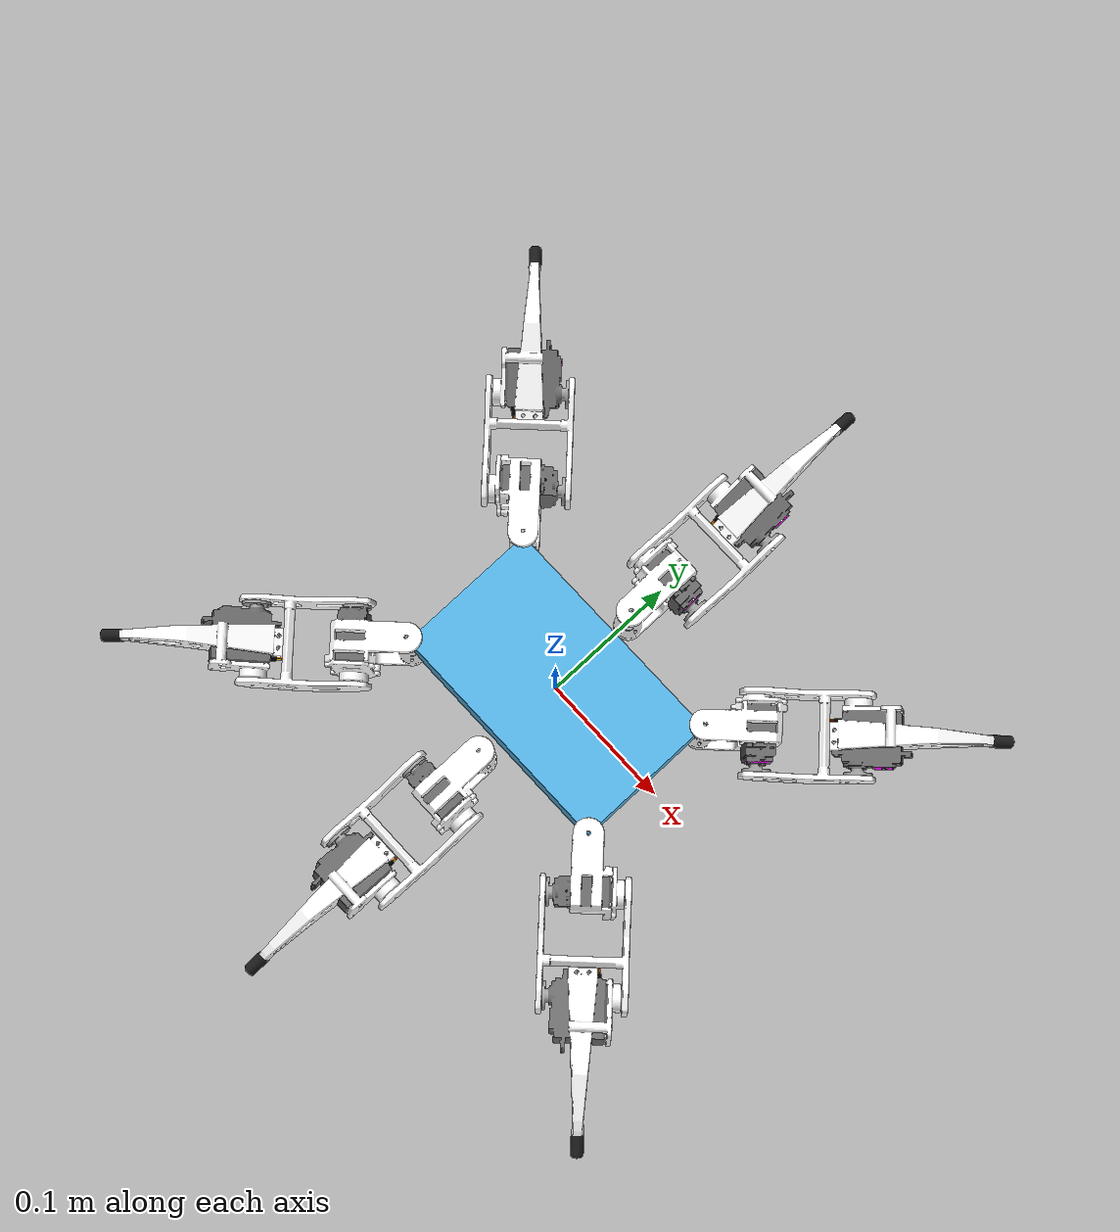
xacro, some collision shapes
<?xml version="1.0"?>
<robot name="hexapod" xmlns:xacro="http://www.ros.org/wiki/xacro">

  <!-- Included files. -->
  <xacro:include filename="xacro_include/joint_control_macro.xacro"/>
  <xacro:include filename="xacro_include/leg_macro.xacro"/>

  <!-- Root link -->
  <link name="base_link"/>

  <!-- Joint connecting root to base -->
  <joint name="root_to_base" type="fixed">
    <origin rpy="0 0 0" xyz="0 0 0"/>
    <parent link="base_link"/>
    <child link="base"/>
  </joint>

  <!-- Base Link -->
  <link name="base">
    <visual>
      <geometry>
        <mesh filename="package://hexapod_sim/meshes/base.dae"/>
      </geometry>
      <origin xyz="0 0 -0.0145" rpy="${-pi/2} 0 0"/>
    </visual>
    <collision>
      <geometry><box size="0.18 0.107 0.050"/></geometry>
      <origin xyz="0 0 0"/>
    </collision>
    <inertial>
      <mass value="0.2"/>
      <inertia ixx="0.001" ixy="0.0" ixz="0.0" iyy="0.001" iyz="0.0" izz="0.001"/>
    </inertial>
  </link>

  <!-- Joint Connecting base to the coxa -->
  <joint name="jl11" type="revolute">
    <axis xyz="1 0 0"/>
    <origin xyz="-0.09 -0.0535 -0.00075" rpy="${3*pi/4} ${pi/2} 0"/>
    <parent link="base"/>
    <child link="coxal1"/>
    <limit effort="1000.0" lower="${-pi}" upper="${pi}" velocity="${2*pi}"/>
    <dynamics damping="0.0" friction="0.0"/>
  </joint>

  <joint name="jl21" type="revolute">
    <axis xyz="1 0 0"/>
    <origin xyz="0 -0.070 -0.00075" rpy="${pi/2} ${pi/2} 0"/>
    <parent link="base"/>
    <child link="coxal2"/>
    <limit effort="1000.0" lower="${-pi}" upper="${pi}" velocity="${2*pi}"/>
    <dynamics damping="0.0" friction="0.0"/>
  </joint>

  <joint name="jl31" type="revolute">
    <axis xyz="1 0 0"/>
    <origin xyz="0.09 -0.0535 -0.00075" rpy="${pi/4} ${pi/2} 0"/>
    <parent link="base"/>
    <child link="coxal3"/>
    <limit effort="1000.0" lower="${-pi}" upper="${pi}" velocity="${2*pi}"/>
    <dynamics damping="0.0" friction="0.0"/>
  </joint>

  <joint name="jl41" type="revolute">
    <axis xyz="1 0 0"/>
    <origin xyz="-0.09 0.0535 -0.00075" rpy="-${3*pi/4} ${pi/2} 0"/>
    <parent link="base"/>
    <child link="coxal4"/>
    <limit effort="1000.0" lower="${-pi}" upper="${pi}" velocity="${2*pi}"/>
    <dynamics damping="0.0" friction="0.0"/>
  </joint>

  <joint name="jl51" type="revolute">
    <axis xyz="1 0 0"/>
    <origin xyz="0 0.070 -0.00075" rpy="${-pi/2} ${pi/2} 0"/>
    <parent link="base"/>
    <child link="coxal5"/>
    <limit effort="1000.0" lower="${-pi}" upper="${pi}" velocity="${2*pi}"/>
    <dynamics damping="0.0" friction="0.0"/>
  </joint>

  <joint name="jl61" type="revolute">
    <axis xyz="1 0 0"/>
    <origin xyz="0.09 0.0535 -0.00075" rpy="${-pi/4} ${pi/2} 0"/>
    <parent link="base"/>
    <child link="coxal6"/>
    <limit effort="1000.0" lower="${-pi}" upper="${pi}" velocity="${2*pi}"/>
    <dynamics damping="0.0" friction="0.0"/>
  </joint>

  <!-- Instantiating the leg segments -->
  <xacro:leg_segment leg_id="l1"/>
  <xacro:leg_segment leg_id="l2"/>
  <xacro:leg_segment leg_id="l3"/>
  <xacro:leg_segment leg_id="l4"/>
  <xacro:leg_segment leg_id="l5"/>
  <xacro:leg_segment leg_id="l6"/>

  <!-- ros2_control global configuration -->
  <ros2_control name="GazeboSimSystem" type="system">
    <hardware>
      <plugin>gz_ros2_control/GazeboSimSystem</plugin>
    </hardware>

    <!-- ros2_control joint definitions -->
    <xacro:joint_control leg_id="l1"/>
    <xacro:joint_control leg_id="l2"/>
    <xacro:joint_control leg_id="l3"/>
    <xacro:joint_control leg_id="l4"/>
    <xacro:joint_control leg_id="l5"/>
    <xacro:joint_control leg_id="l6"/>
  </ros2_control>

  <!-- Gazebo plugin for ros2_control -->
  <gazebo>
    <plugin filename="gz_ros2_control-system" name="gz_ros2_control::GazeboSimROS2ControlPlugin">
      <parameters>$(find hexapod_sim)/config/robot_controller.yaml</parameters>
    </plugin>
  </gazebo>
</robot>

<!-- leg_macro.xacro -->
<robot xmlns:xacro="http://www.ros.org/wiki/xacro">

  <!-- Reusable macro for a leg segment (coxa to tip). -->
  <xacro:macro name="leg_segment" params="leg_id">

    <!-- Coxa Link -->
    <link name="coxa${leg_id}">
      <visual>
      <geometry>
        <mesh filename="package://hexapod_sim/meshes/coxa.dae"/>
      </geometry>
        <origin xyz="0.02125 0 0" rpy="${-pi/2} ${-pi/2} 0"/>
      </visual>
      <collision>
        <geometry><cylinder radius="0.0135" length="0.0385"/></geometry>
        <origin xyz="0 0 0.01925"/>
      </collision>
      <inertial>
        <mass value="0.1"/>
        <inertia ixx="0.001" ixy="0.0" ixz="0.0" iyy="0.001" iyz="0.0" izz="0.001"/>
      </inertial>
    </link>

    <!-- Joint between Coxa and Femur (j2 equivalent) -->
    <joint name="j${leg_id}2" type="revolute">
      <axis xyz="0 1 0"/>
      <origin xyz="0 0 0.0385" rpy="0 0 0"/>
      <parent link="coxa${leg_id}"/>
      <child link="femur${leg_id}"/>
      <limit effort="1000.0" lower="${-pi}" upper="${pi}" velocity="${pi/2}"/>
      <dynamics damping="0.0" friction="0.0"/>
    </joint>

    <!-- Femur Link -->
    <link name="femur${leg_id}">
      <visual>
      <geometry>
        <mesh filename="package://hexapod_sim/meshes/femur.dae"/>
      </geometry>
        <origin xyz="0 -0.0315 0" rpy="0 0 ${pi}"/>
      </visual>
      <collision>
        <geometry><cylinder radius="0.008" length="0.070"/></geometry>
        <origin xyz="0 0 0.035"/>
      </collision>
      <inertial>
        <mass value="0.1"/>
        <inertia ixx="0.001" ixy="0.0" ixz="0.0" iyy="0.001" iyz="0.0" izz="0.001"/>
      </inertial>
    </link>

    <!-- Joint between Femur and Tibia (j3 equivalent) -->
    <joint name="j${leg_id}3" type="revolute">
      <axis xyz="0 1 0"/>
      <origin xyz="0 0 0.070" rpy="0 0 0"/>
      <parent link="femur${leg_id}"/>
      <child link="tibia${leg_id}"/>
      <limit effort="1000.0" lower="${-pi}" upper="${pi}" velocity="${pi/2}"/>
      <dynamics damping="0.0" friction="0.0"/>
    </joint>

    <!-- Tibia Link -->
    <link name="tibia${leg_id}">
      <visual>
      <geometry>
        <mesh filename="package://hexapod_sim/meshes/tibia.dae"/>
      </geometry>
        <origin xyz="0 -0.02725 0" rpy="${pi} -0.235 0"/>
      </visual>
      <collision>
        <geometry><cylinder radius="0.004" length="0.102"/></geometry>
        <origin xyz="0 0 0.051"/>
      </collision>
      <inertial>
        <mass value="0.1"/>
        <inertia ixx="0.001" ixy="0.0" ixz="0.0" iyy="0.001" iyz="0.0" izz="0.001"/>
      </inertial>
    </link>

    <!-- Joint between Tibia and Tip (fixed) -->
    <joint name="j${leg_id}4" type="fixed">
      <origin xyz="0 0 0.102" rpy="0 0 0"/>
      <parent link="tibia${leg_id}"/>
      <child link="tip${leg_id}"/>
    </joint>

    <!-- Tip Link (colision only) -->
    <link name="tip${leg_id}">
      <collision>
        <geometry><sphere radius="0.004"/></geometry>
        <origin xyz="0 0 0"/>
      </collision>
      <inertial>
        <mass value="0.01"/>
        <inertia ixx="0.001" ixy="0.0" ixz="0.0" iyy="0.001" iyz="0.0" izz="0.001"/>
      </inertial>
    </link>

    <!-- Tip link physics -->
    <gazebo reference="tip${leg_id}">
      <mu1>1.2</mu1>
      <mu2>1.2</mu2>
      <kp>1000000.0</kp>
      <kd>100.0</kd>
      <minDepth>0.001</minDepth>
      <maxVel>0.1</maxVel>
      <material>Gazebo/Grey</material>
    </gazebo>

  </xacro:macro>

</robot>
